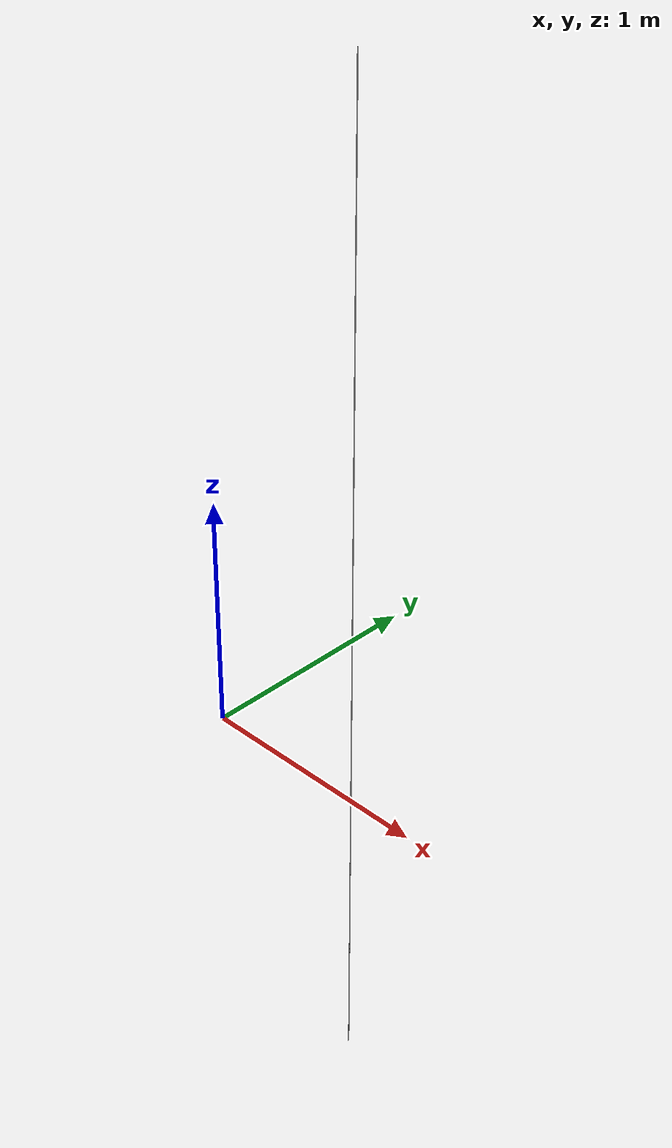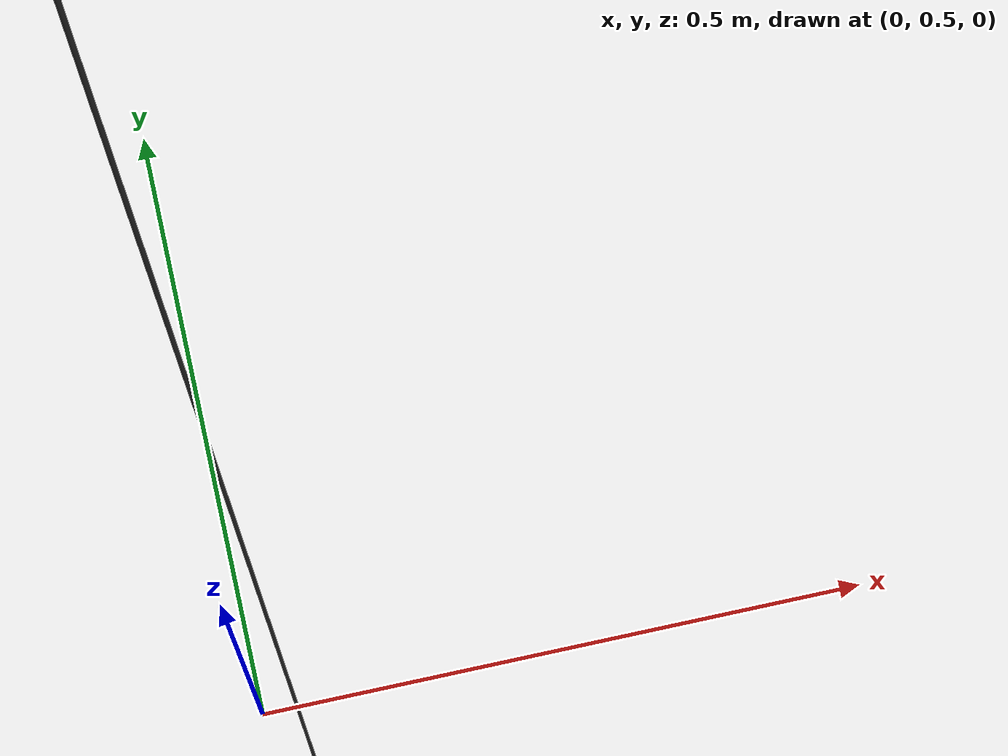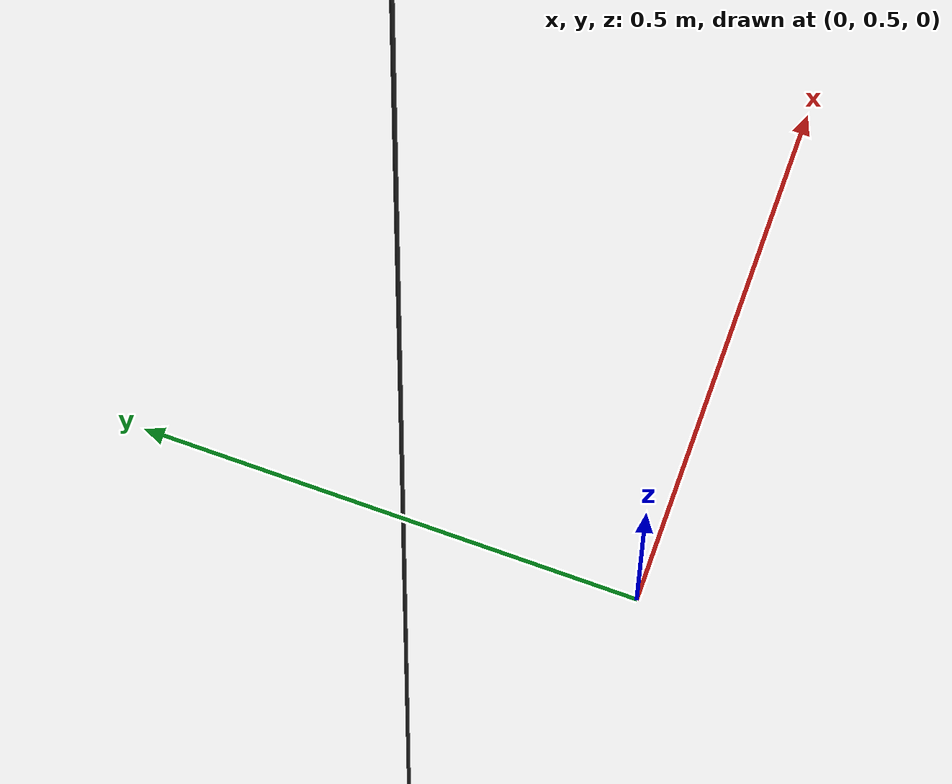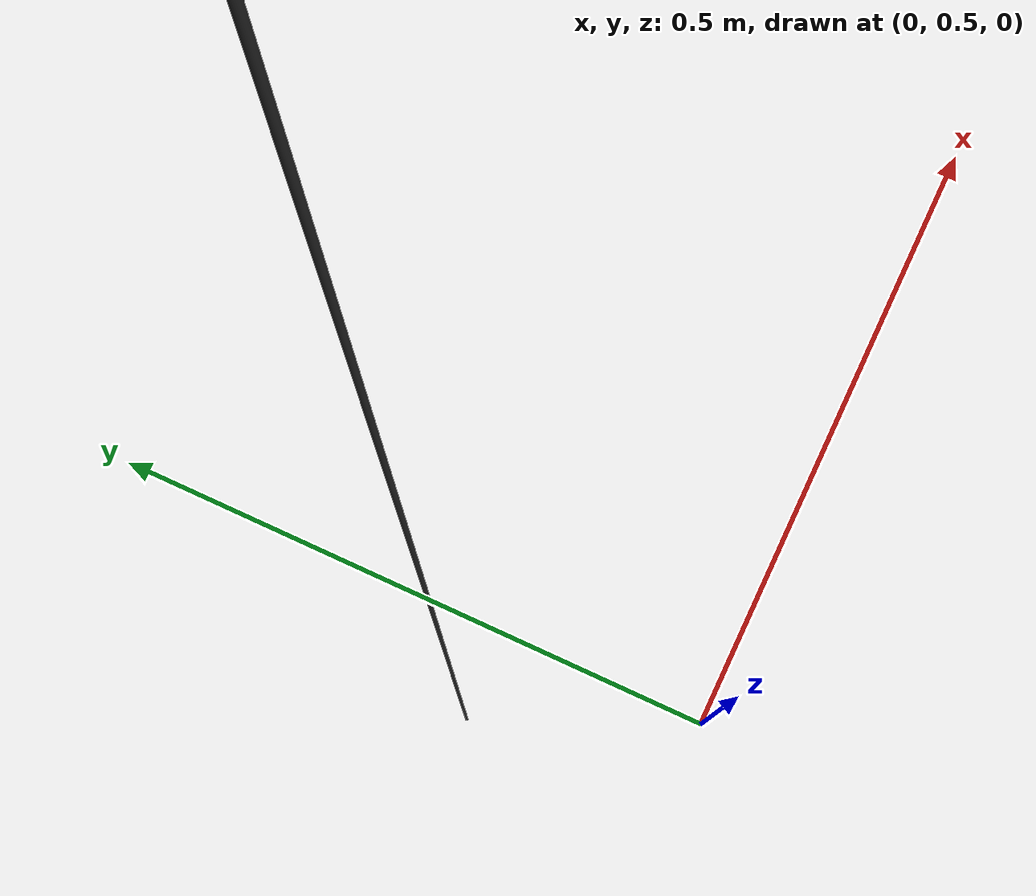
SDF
<?xml version='1.0'?>
<sdf version='1.7'>
  <model name='cable_0'>
    <link name='cable_link_0'>
      <kinematic>0</kinematic>
      <inertial>
        <mass>0.005</mass>
        <inertia>
          <ixx>0.0002508</ixx>
          <ixy>0</ixy>
          <ixz>0</ixz>
          <iyy>0.00012351</iyy>
          <iyz>0</iyz>
          <izz>0.000123</izz>
        </inertia>
        <pose>0 0 0 0 -0 0</pose>
      </inertial>
      <self_collide>0</self_collide>
      <enable_wind>0</enable_wind>
      <pose>-0 0.73749 -0 0 -0 0</pose>
      <gravity>1</gravity>
      <visual name='tether_visual'>
        <pose>0 0 0 0 -0 0</pose>
        <geometry>
          <cylinder>
            <radius>0.002</radius>
            <length>5</length>
          </cylinder>
        </geometry>
        <material>
          <script>
            <name>Gazebo/Black</name>
            <uri>file://media/materials/scripts/gazebo.material</uri>
          </script>
          <shader type='pixel'>
            <normal_map>__default__</normal_map>
          </shader>
        </material>
        <transparency>0</transparency>
        <cast_shadows>1</cast_shadows>
      </visual>
      <collision name='tether_collision'>
        <laser_retro>0</laser_retro>
        <max_contacts>10</max_contacts>
        <pose>0 0 0 0 -0 0</pose>
        <geometry>
          <cylinder>
            <radius>0.002</radius>
            <length>5</length>
          </cylinder>
        </geometry>
        <surface>
          <friction>
            <ode>
              <mu>1</mu>
              <mu2>1</mu2>
              <fdir1>0 0 0</fdir1>
              <slip1>0</slip1>
              <slip2>0</slip2>
            </ode>
            <torsional>
              <coefficient>1</coefficient>
              <patch_radius>0</patch_radius>
              <surface_radius>0</surface_radius>
              <use_patch_radius>1</use_patch_radius>
              <ode>
                <slip>0</slip>
              </ode>
            </torsional>
          </friction>
          <bounce>
            <restitution_coefficient>0</restitution_coefficient>
            <threshold>1e+06</threshold>
          </bounce>
          <contact>
            <collide_without_contact>0</collide_without_contact>
            <collide_without_contact_bitmask>1</collide_without_contact_bitmask>
            <collide_bitmask>1</collide_bitmask>
            <ode>
              <soft_cfm>0</soft_cfm>
              <soft_erp>0.2</soft_erp>
              <kp>1e+13</kp>
              <kd>1</kd>
              <max_vel>0.01</max_vel>
              <min_depth>0</min_depth>
            </ode>
            <bullet>
              <split_impulse>1</split_impulse>
              <split_impulse_penetration_threshold>-0.01</split_impulse_penetration_threshold>
              <soft_cfm>0</soft_cfm>
              <soft_erp>0.2</soft_erp>
              <kp>1e+13</kp>
              <kd>1</kd>
            </bullet>
          </contact>
        </surface>
      </collision>
    </link>
    <static>0</static>
    <allow_auto_disable>1</allow_auto_disable>
  </model>
</sdf>
